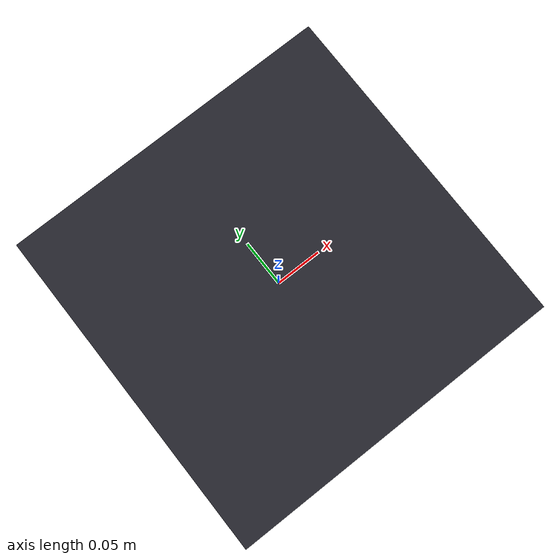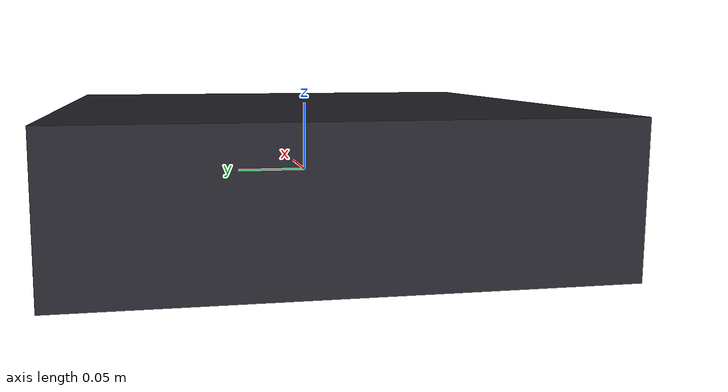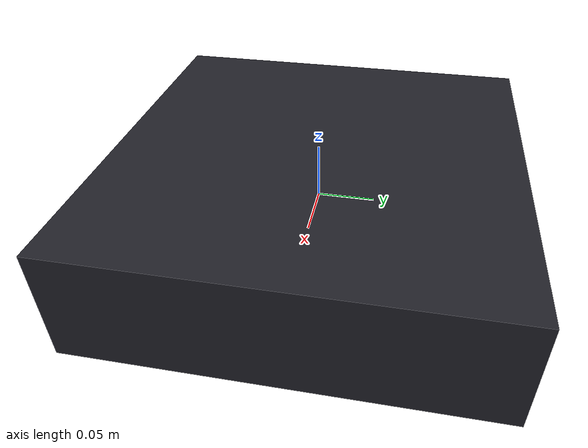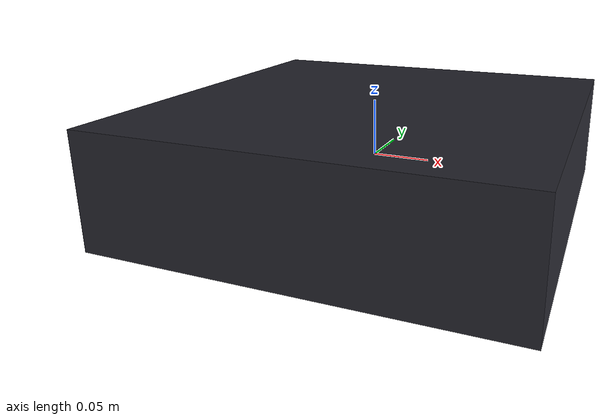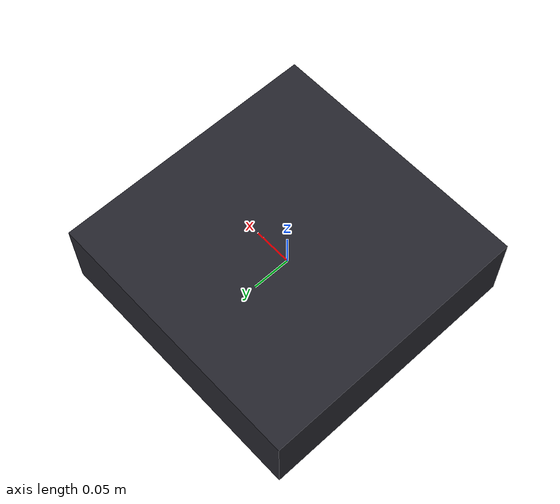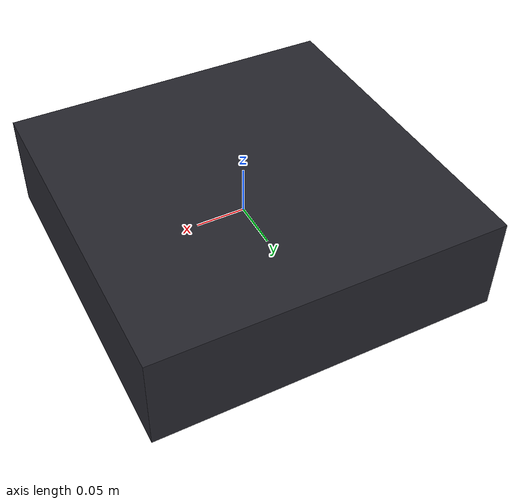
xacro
<?xml version="1.0"?>
<robot xmlns:xacro="http://www.ros.org/wiki/xacro" name="x500_dronoto">

  <link name="base_link">
    <visual>
      <geometry><box size="0.35 0.35 0.10"/></geometry>
      <material name="carbon"><color rgba="0.15 0.15 0.18 1.0"/></material>
    </visual>
  </link>

  <!-- IMU : dans le controleur de vol, au centre -->
  <link name="imu_link"/>
  <joint name="base_to_imu" type="fixed">
    <parent link="base_link"/>
    <child link="imu_link"/>
    <origin xyz="0 0 0" rpy="0 0 0"/>
  </joint>

  <!-- LiDAR Livox Mid-360, monte au-dessus du corps (branche en P2) -->
  <link name="lidar_link"/>
  <joint name="base_to_lidar" type="fixed">
    <parent link="base_link"/>
    <child link="lidar_link"/>
    <origin xyz="0.10 0 0.08" rpy="0 0 0"/>
  </joint>

  <!-- Camera avant, inclinee de 15 degres vers le bas (branchee en P2) -->
  <link name="cam_front_link"/>
  <joint name="base_to_cam_front" type="fixed">
    <parent link="base_link"/>
    <child link="cam_front_link"/>
    <origin xyz="0.12 0 0.02" rpy="0 0.2618 0"/>
  </joint>

  <!-- Antenne GNSS, sur mat -->
  <link name="gnss_link"/>
  <joint name="base_to_gnss" type="fixed">
    <parent link="base_link"/>
    <child link="gnss_link"/>
    <origin xyz="-0.08 0 0.15" rpy="0 0 0"/>
  </joint>

</robot>
